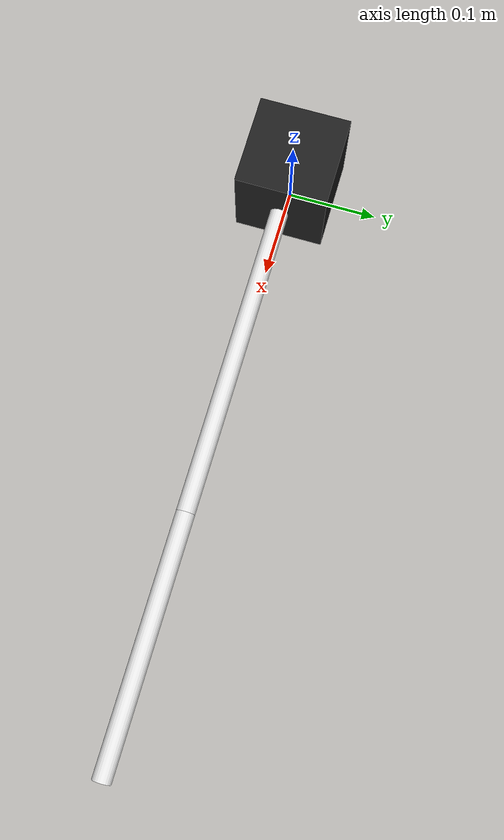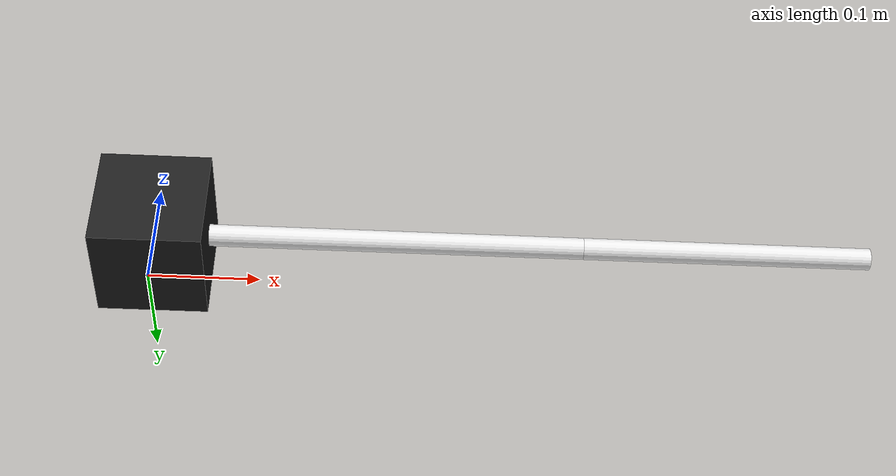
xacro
<?xml version="1.0" ?>
<robot name="planar" xmlns:xacro="http://ros.org/wiki/xacro">

 <xacro:include filename="$(find robot2_description)/urdf/robot2_2.xacro" />

 <link name="world">
 </link>

  <material name="red">
    <color rgba="0.8 0.0 0.0 1.0"/>
  </material>
  <material name="grey">
    <color rgba="0.4 0.4 0.4 1.0" />
  </material>

 <joint name="bottom_joint" type="fixed">
    <origin xyz="0 0 0" rpy="0 0 0" />
    <parent link="world"/>
    <child link="base_link"/>
  </joint>

    <link name="base_link">
        <visual>
            <origin xyz="0 0 ${base_height/2}" rpy="0 0 0"/>
            <geometry>
                <box size="${base_width}  ${base_width} ${base_height}"/>
            </geometry>
            <material name="Black"/>
        </visual>
        <collision>
             <origin xyz="0 0 ${base_height/2}" rpy="0 0 0"/>
            <geometry>
                <box size="${base_width}  ${base_width} ${base_height}" />
           </geometry>
        </collision>
         <xacro:inertial_box mass="4" x="${base_width} " y="${base_width} " z="${base_height} ">
            <origin xyz="0 0 ${base_height/2}" rpy="0 0 0"/>
        </xacro:inertial_box>
    </link>

   	<gazebo reference="base_link">
    		<material>Gazebo/Black</material>
  	</gazebo>

 	<xacro:joint_revolute_z joint_name="axis_2_joint" parent_link ="base_link"
			child_link ="axis_2_link">
	 	<origin xyz="${base_width/2}  0 ${base_height/2}" rpy="0 0 0"/>
	</xacro:joint_revolute_z>

	 <!-- Axis_2 Link-->
 	<link name="axis_2_link">
		<xacro:cylinder_visual_collision_white radius ="${axis_2_radius}" length ="${axis_2_height}">
		<origin  xyz="${axis_2_height/2} 0 0" rpy="0 1.5708 0"/>
		</xacro:cylinder_visual_collision_white>
	 	<xacro:inertial_cylinder mass="4" length = "${axis_2_height}" radius ="${axis_2_radius}">
           <origin  xyz="${axis_2_height/2} 0 0" rpy="0 1.5708 0 "/>
        	</xacro:inertial_cylinder>
	</link>

	<xacro:joint_revolute_z joint_name="axis_3_joint" parent_link ="axis_2_link"
		child_link ="axis_3_link">
	 <origin xyz="${axis_2_height}  0 0" rpy="0 0 0"/>
	</xacro:joint_revolute_z>

	 <!-- Axis_2 Link-->
 	<link name="axis_3_link">
		<xacro:cylinder_visual_collision_white radius ="${axis_2_radius}" length ="${axis_3_height}">
		<origin  xyz="${axis_3_height/2} 0 0" rpy="0 1.5708 0"/>
		</xacro:cylinder_visual_collision_white>
	 	<xacro:inertial_cylinder mass="4" length = "${axis_3_height}" radius ="${axis_2_radius}">
           <origin  xyz="${axis_3_height/2} 0 0" rpy="0 1.5708 0"/>
        	</xacro:inertial_cylinder>
	</link>

	<xacro:transmission joint_name="axis_2_joint">
	</xacro:transmission>
	<xacro:transmission joint_name="axis_3_joint">
	</xacro:transmission>

  <gazebo>
    <plugin name="gazebo_ros_control" filename="libgazebo_ros_control.so">
          <robotNamespace>/planar</robotNamespace>
     <robotSimType>gazebo_ros_control/DefaultRobotHWSim</robotSimType>
    </plugin>
  </gazebo>

</robot>

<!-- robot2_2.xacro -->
<robot xmlns:xacro="http://www.ros.org/wiki/xacro" >

	 <!-- Include materials -->

     <xacro:property name="deg_to_rad" value="0.01745329251994329577"/>

  <!-- Constants -->
  <xacro:property name="M_SCALE_CM" value="0.01"/>
  <xacro:property name="M_PI" value="3.14159"/>

  <!-- Base properties -->
  <xacro:property name="base_height" value="0.1" />
  <xacro:property name="base_width" value="0.1" />

  <!-- Axis_2 Fixed Angles-->
  <xacro:property name="axis_2_height" value="0.343" />
  <xacro:property name="axis_2_radius" value="${0.01}" />

  <!-- Axis_3 Shoulder_Rotation -->
  <xacro:property name="axis_3_height" value="${0.267}" />

  <!-- Axis_4_Forearm_rotation-->
  <xacro:property name="axis_4_height" value="${1.5}" />

  <!-- Axis_5 Wrist rotation-->
  <xacro:property name="axis_5_height" value="${1.5}" />

  <xacro:macro name="inertial_box" params="mass x y z *origin">
        <inertial>
            <xacro:insert_block name="origin"/>
            <mass value="${mass}" />
            <inertia ixx="${(1/12) * mass * (y*y+z*z)}" ixy="0.0" ixz="0.0"
                    iyy="${(1/12) * mass * (x*x+z*z)}" iyz="0.0"
                    izz="${(1/12) * mass * (x*x+y*y)}" />
        </inertial>
    </xacro:macro>

    <xacro:macro name="inertial_cylinder" params="mass length radius *origin">
        <inertial>
            <xacro:insert_block name="origin"/>
            <mass value="${mass}" />
            <inertia ixx="${(1/12)*mass*(3*radius*radius+length*length)}" 				ixy="0.0" ixz="0.0"
                    iyy="${(1/12)*mass*(3*radius*radius+length*length)}" 				iyz="0.0"
                    izz="${(1/12)*mass*(radius*radius)}" />
        </inertial>
    </xacro:macro>

     <xacro:macro name="inertial_sphere" params="mass radius *origin">
        <inertial>
            <xacro:insert_block name="origin"/>
            <mass value="${mass}" />
            <inertia ixx="${(2/5) * mass * (radius*radius)}" ixy="0.0" ixz="0.0"
                    iyy="${(2/5) * mass * (radius*radius)}" iyz="0.0"
                    izz="${(2/5) * mass * (radius*radius)}" />
        </inertial>
    </xacro:macro>

<!-- Max effort 2 not wokring check  -->
  <xacro:property name="max_rads" value="10.157816"/>
  <xacro:property name="max_effort_2" value="17"/>

   <xacro:macro name="joint_revolute_z" params="joint_name parent_link child_link *origin">
        <joint name ="${joint_name}" type="revolute">
        <axis xyz="0 0 1" />
        <limit effort="15" velocity="${max_rads}" lower="-1.57" 					upper="1.57"/>
        <parent link ="${parent_link}"/>
    	<child link ="${child_link}"/>
        <xacro:insert_block name="origin"/>
  	</joint>
   </xacro:macro>

   <xacro:macro name="joint_revolute_y" params="joint_name parent_link child_link  *origin">
        <joint name = "${joint_name}" type= "revolute">
        <axis xyz="0 1 0" />
        <dynamics damping ="1" friction="2"/>
        <limit effort="50" velocity="${max_rads}" lower="${-150*deg_to_rad}" 				upper="${150*deg_to_rad}"/>
        <parent link="${parent_link}"/>
    	<child link="${child_link}"/>
            <xacro:insert_block name="origin"/>
    </joint>
    </xacro:macro>

     <xacro:macro name="cylinder_visual_collision_white" params="radius length  				*origin">
       <visual>
             <xacro:insert_block name="origin"/>
            <geometry>
                <cylinder radius="${radius}" length="${length}"/>
            </geometry>
            <material name="White"/>
        </visual>
        <collision>
             <xacro:insert_block name="origin"/>
            <geometry>
                <cylinder radius="${radius}" length="${length}"/>
            </geometry>
        </collision>
    </xacro:macro>

      <xacro:macro name="cylinder_visual_collision_red" params="radius length  				*origin">
       <visual>
             <xacro:insert_block name="origin"/>
            <geometry>
                <cylinder radius="${radius}" length="${length}"/>
            </geometry>
            <material name="Red"/>
        </visual>
        <collision>
             <xacro:insert_block name="origin"/>
            <geometry>
                <cylinder radius="${radius}" length="${length}"/>
            </geometry>
        </collision>
    </xacro:macro>
    <xacro:macro name="transmission" params= "joint_name">
     <transmission name="trans_${joint_name}">
  		<type>transmission_interface/SimpleTransmission</type>
     		<joint name="${joint_name}">
        		<hardwareInterface>hardware_interface/EffortJointInterface</hardwareInterface>
      		</joint>
      		<actuator name="motor_${joint_name}">
        		<hardwareInterface>hardware_interface/EffortJointInterface</hardwareInterface>
        		<mechanicalReduction>1</mechanicalReduction>
      		</actuator>
    	</transmission>
   </xacro:macro>

 </robot>
